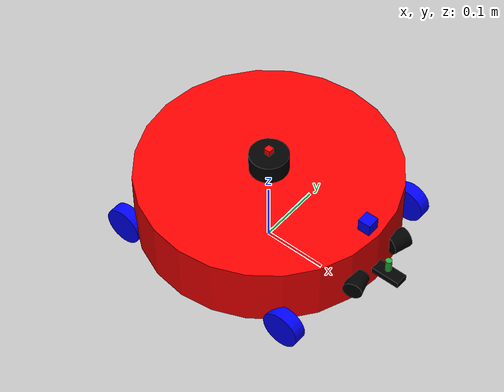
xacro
<?xml version="1.0"?>
<robot name="soccer_bot" xmlns:xacro="http://www.ros.org/wiki/xacro">

  <!-- Properties -->
  <xacro:property name="wheel_radius" value="0.03"/>
  <xacro:property name="wheel_width" value="0.02"/>
  <xacro:property name="wheel_mass" value="0.2"/>

  <link name="base_footprint"/>

    <joint name="base_footprint_joint" type="fixed">
        <parent link="base_footprint"/>
        <child link="base_link"/>
        <origin xyz="0 0 0.05"/>
    </joint>

  <!-- ================= BASE LINK ================= -->
  <link name="base_link">
    <visual>
      <origin xyz="0 0 0.05"/>
      <geometry>
        <cylinder radius="0.2" length="0.1"/>
      </geometry>
      <material name="red">
        <color rgba="1 0 0 1"/>
      </material>
    </visual>

    <collision>
      <origin xyz="0 0 0.05"/>
      <geometry>
        <cylinder radius="0.2" length="0.1"/>
      </geometry>
    </collision>

    <inertial>
      <origin xyz="0 0 0.05"/>
      <mass value="1.0"/>
      <inertia
        ixx="0.006" ixy="0.0" ixz="0.0"
        iyy="0.006" iyz="0.0"
        izz="0.012"/>
    </inertial>
  </link>

  <!-- IMU LINK -->
  <link name="imu_link">
    <visual>
      <geometry>
        <box size="0.01 0.01 0.01"/>
      </geometry>
      <material name="red"/>
    </visual>

    <collision>
      <geometry>
        <box size="0.01 0.01 0.01"/>
      </geometry>
    </collision>

    <inertial>
      <mass value="0.01"/>
      <inertia
        ixx="1e-5" ixy="0" ixz="0"
        iyy="1e-5" iyz="0"
        izz="1e-5"/>
    </inertial>
  </link>

  <joint name="imu_joint" type="fixed">
    <parent link="base_link"/>
    <child link="imu_link"/>
    <origin xyz="0 0 0.137"/>
  </joint>

  <!-- IR SENSOR LINK -->
  <link name="ir_link">
    <inertial>
      <mass value="0.005"/>
      <inertia ixx="1e-6" iyy="1e-6" izz="1e-6"/>
    </inertial>

    <visual>
      <geometry>
        <cylinder radius="0.005" length="0.02"/>
      </geometry>
      <material name="green"/>
    </visual>
    <collision>
      <geometry>
        <cylinder radius="0.005" length="0.02"/>
      </geometry>
    </collision>
  </link>

  <joint name="ir_joint" type="fixed">
    <parent link="base_link"/>
    <child link="ir_link"/>
    <origin xyz="0.22 0 0.049"/>
  </joint>

  <!-- ================= WHEEL MACRO ================= -->
  <xacro:macro name="wheel" params="name x y">
    <link name="${name}">
      <visual>
        <origin rpy="1.5708 0 0"/>
        <geometry>
          <cylinder radius="${wheel_radius}" length="${wheel_width}"/>
        </geometry>
        <material name="blue">
          <color rgba="0 0 1 1"/>
        </material>
      </visual>

      <collision>
        <origin rpy="1.5708 0 0"/>
        <geometry>
          <cylinder radius="${wheel_radius}" length="${wheel_width}"/>
        </geometry>
      </collision>

      <inertial>
        <mass value="${wheel_mass}"/>
        <inertia
          ixx="0.0001" ixy="0" ixz="0"
          iyy="0.0001" iyz="0"
          izz="0.0001"/>
      </inertial>
    </link>

    <joint name="${name}_joint" type="continuous">
      <parent link="base_link"/>
      <child link="${name}"/>
      <origin xyz="${x} ${y} 0.0"/>
      <axis xyz="0 1 0"/>
      <dynamics damping="0.1" friction="0.0"/>
    </joint>
  </xacro:macro>

  <!-- ================= WHEELS ================= -->
  <xacro:wheel name="front_left_wheel"  x="0.15"  y="0.15"/>
  <xacro:wheel name="front_right_wheel" x="0.15"  y="-0.15"/>
  <xacro:wheel name="back_left_wheel"   x="-0.15" y="0.15"/>
  <xacro:wheel name="back_right_wheel"  x="-0.15" y="-0.15"/>

    <!-- Camera -->
    <link name="camera_link">
      <visual>
        <geometry>
          <box size="0.02 0.02 0.02"/>
        </geometry>
        <material name="blue"/>
      </visual>
    </link>

    <joint name="camera_joint" type="fixed">
      <parent link="base_link"/>
      <child link="camera_link"/>
      <origin xyz="0.18 0 0.11" rpy="0 0 0"/>
    </joint>

    <!-- Kicker (solenoid valve) -->
    <link name="kicker_link">
        <visual>
            <geometry>
            <box size="0.05 0.02 0.01"/>
            </geometry>
            <material name="black"/>
        </visual>

      <inertial>
        <origin xyz="0 0 0"/>
        <mass value="0.1"/>
        <inertia
          ixx="0.0001" ixy="0.0" ixz="0.0"
          iyy="0.0001" iyz="0.0"
          izz="0.0001"/>
      </inertial>
    </link>

    <joint name="kicker_joint" type="prismatic">
        <parent link="base_link"/>
        <child link="kicker_link"/>
        <origin xyz="0.22 0 0.03"/>
        <axis xyz="1 0 0"/>
        <limit lower="0.0" upper="0.03" effort="50" velocity="2"/>
    </joint>

      <!-- ================= GRIPPER MACRO ================= -->
    <xacro:macro name="gripper" params="name x y yaw">
      <link name="${name}">
        <visual>
          <origin rpy="1.5708 0 0"/>
          <geometry>
            <cylinder radius="0.015" length="0.03"/>
          </geometry>
          <material name="black">
            <color rgba="0 0 0 1"/>
          </material>
        </visual>

        <collision>
          <origin rpy="1.5708 0 0"/>
          <geometry>
            <cylinder radius="0.015" length="0.03"/>
          </geometry>
        </collision>

        <inertial>
          <mass value="0.05"/>
          <inertia
            ixx="0.00002" ixy="0" ixz="0"
            iyy="0.00002" iyz="0"
            izz="0.00002"/>
        </inertial>
      </link>

      <joint name="${name}_joint" type="continuous">
        <parent link="base_link"/>
        <child link="${name}"/>
        <origin xyz="${x} ${y} 0.04" rpy="0 0 ${yaw}"/>
        <axis xyz="0 1 0"/>
      </joint>
    </xacro:macro>

  <!-- ================= GRIPPERS ================= -->
    <xacro:gripper name="left_gripper_wheel"  x="0.2"  y="0.05" yaw="-0.3"/>
    <xacro:gripper name="right_gripper_wheel" x="0.2"  y="-0.05" yaw="0.3"/>

  <!-- ================= LIDAR ================= -->
  <link name="lidar_link">
    <visual>
      <geometry>
        <cylinder radius="0.03" length="0.03"/>
      </geometry>
      <material name="black"/>
    </visual>

    <collision>
      <geometry>
        <cylinder radius="0.03" length="0.03"/>
      </geometry>
    </collision>

    <inertial>
      <mass value="0.1"/>
      <inertia
        ixx="0.0001" ixy="0" ixz="0"
        iyy="0.0001" iyz="0"
        izz="0.0001"/>
    </inertial>
  </link>

  <joint name="lidar_joint" type="fixed">
    <parent link="base_link"/>
    <child link="lidar_link"/>
    <origin xyz="0 0 0.116" rpy="0 0 0"/>
  </joint>

    <!-- Gazebo Condition -->
  <gazebo reference="base_link">
    <selfCollide>false</selfCollide>
    </gazebo>
  <gazebo reference="front_left_wheel">
    <selfCollide>false</selfCollide>
    </gazebo>
  <gazebo reference="front_right_wheel">
    <selfCollide>false</selfCollide>
    </gazebo>
  <gazebo reference="back_left_wheel">
    <selfCollide>false</selfCollide>
    </gazebo>
  <gazebo reference="back_right_wheel">
    <selfCollide>false</selfCollide>
    </gazebo>
  <gazebo reference="camera_link">
    <selfCollide>false</selfCollide>
    </gazebo>
  <gazebo reference="kicker_link">
    <selfCollide>false</selfCollide>
    </gazebo>
  <gazebo reference="left_gripper_wheel">
    <selfCollide>false</selfCollide>
    </gazebo>
  <gazebo reference="right_gripper_wheel">
    <selfCollide>false</selfCollide>
    </gazebo>
  <gazebo reference="lidar_link">
    <selfCollide>false</selfCollide>
    </gazebo>
  <gazebo reference="imu_link">
    <selfCollide>false</selfCollide>
    </gazebo>
  <gazebo reference="ir_link">
    <selfCollide>false</selfCollide>
    </gazebo>

    <!-- LIDAR Sensor -->
    <gazebo reference="lidar_link">
      <sensor name="lidar" type="gpu_lidar">
        <always_on>true</always_on>
        <update_rate>10</update_rate>
        <visualize>true</visualize>

        <topic>scan</topic>

        <lidar>
          <scan>
            <horizontal>
              <samples>360</samples>
              <resolution>1</resolution>
              <min_angle>-3.14159</min_angle>
              <max_angle>3.14159</max_angle>
            </horizontal>
          </scan>

          <range>
            <min>0.05</min>
            <max>10.0</max>
            <resolution>0.01</resolution>
          </range>
        </lidar>

      </sensor>
    </gazebo>

  <!-- Wheel Friction Macro -->
  <xacro:macro name="wheel_friction" params="wheel">
  <gazebo reference="${wheel}">
    <surface>
      <friction>
        <ode>
          <mu>1.2</mu>
          <mu2>1.2</mu2>
        </ode>
      </friction>
    </surface>
  </gazebo>
</xacro:macro>

<!-- Apply friction to all wheels -->
<xacro:wheel_friction wheel="front_left_wheel"/>
<xacro:wheel_friction wheel="front_right_wheel"/>
<xacro:wheel_friction wheel="back_left_wheel"/>
<xacro:wheel_friction wheel="back_right_wheel"/>

  <!-- Gripper Friction Gazebo -->
  <gazebo reference="left_gripper_wheel">
    <mu1>1.2</mu1>
    <mu2>1.2</mu2>
  </gazebo>
  <gazebo reference="right_gripper_wheel">
    <mu1>1.2</mu1>
    <mu2>1.2</mu2>
  </gazebo>

  <!-- Diff Drive Plugin -->
  <gazebo>
    <plugin
      filename="gz-sim-diff-drive-system"
      name="gz::sim::systems::DiffDrive">

      <left_joint>front_left_wheel_joint</left_joint>
      <left_joint>back_left_wheel_joint</left_joint>

      <right_joint>front_right_wheel_joint</right_joint>
      <right_joint>back_right_wheel_joint</right_joint>

      <wheel_separation>0.30</wheel_separation>
      <wheel_radius>0.03</wheel_radius>

      <odom_publish_frequency>50</odom_publish_frequency>
      <topic>cmd_vel</topic>
      <odom_topic>odom</odom_topic>
      <frame_id>odom</frame_id>
      <child_frame_id>base_link</child_frame_id>
  </plugin>
</gazebo>

<!-- Sensors Plugin -->
<gazebo>
    <plugin
      filename="gz-sim-sensors-system"
      name="gz::sim::systems::Sensors"/>
    <plugin
      filename="gz-sim-imu-system"
      name="gz::sim::systems::Imu"/>
</gazebo>

<!-- Gazebo Sensor for Camera -->
<gazebo reference="camera_link">
    <sensor name="camera" type="camera">
      <always_on>true</always_on>
      <visualize>true</visualize>
      <update_rate>30</update_rate>

      <camera>
        <horizontal_fov>1.047</horizontal_fov>
        <image>
          <width>640</width>
          <height>480</height>
          <format>R8G8B8</format>
        </image>
        <clip>
          <near>0.1</near>
          <far>100</far>
        </clip>
      </camera>

      <topic>/camera/image</topic>
    </sensor>
  </gazebo>

  <!-- Gazebo Sensor for IMU -->
  <gazebo reference="base_link">
    <sensor name="imu_sensor" type="imu">
      <always_on>true</always_on>
      <update_rate>200</update_rate>
      <visualize>false</visualize>
      <topic>/imu/data</topic>
      <imu>
        <angular_velocity>
          <x><noise type="gaussian"><mean>0</mean><stddev>0.00001</stddev></noise></x>
          <y><noise type="gaussian"><mean>0</mean><stddev>0.00001</stddev></noise></y>
          <z><noise type="gaussian"><mean>0</mean><stddev>0.00001</stddev></noise></z>
        </angular_velocity>
        <linear_acceleration>
          <x><noise type="gaussian"><mean>0</mean><stddev>0.001</stddev></noise></x>
          <y><noise type="gaussian"><mean>0</mean><stddev>0.001</stddev></noise></y>
          <z><noise type="gaussian"><mean>0</mean><stddev>0.001</stddev></noise></z>
        </linear_acceleration>
      </imu>
    </sensor>
  </gazebo>

  <!-- Gazebo Sensor for IR -->
  <gazebo reference="ir_link">
    <sensor name="ir_sensor" type="gpu_lidar">
      <always_on>true</always_on>
      <update_rate>50</update_rate>
      <topic>/ir/beam</topic>

      <lidar>
        <scan>
          <horizontal>
            <samples>1</samples>
            <min_angle>0</min_angle>
            <max_angle>0</max_angle>
          </horizontal>
        </scan>
        <range>
          <min>0.01</min>
          <max>0.02</max>
        </range>
      </lidar>
    </sensor>
  </gazebo>

</robot>
